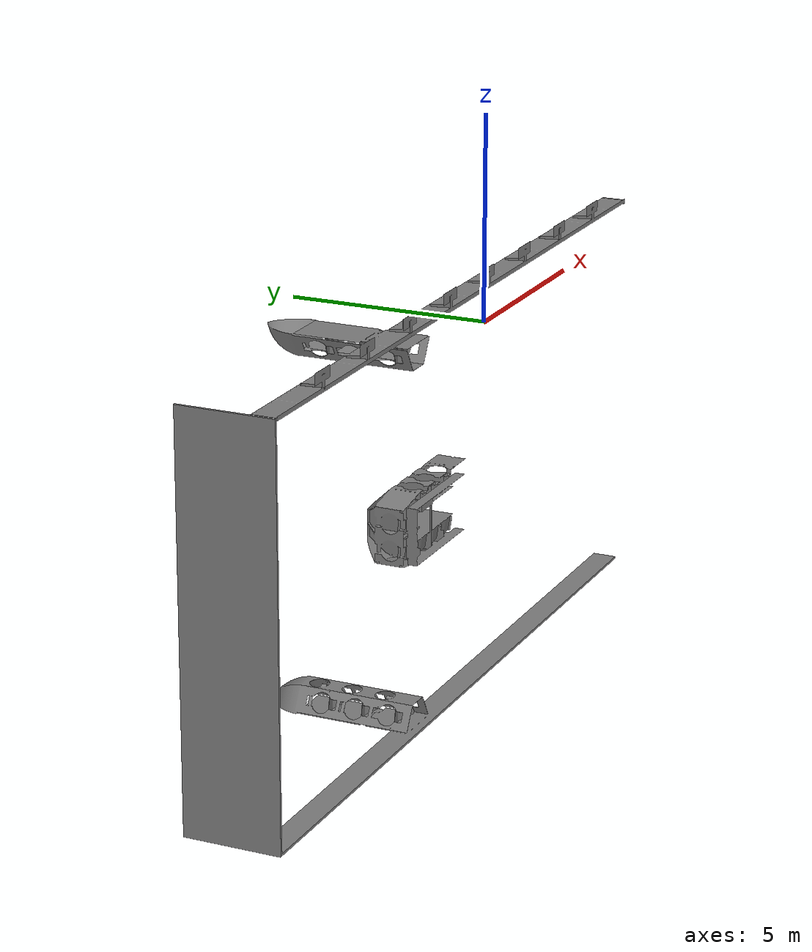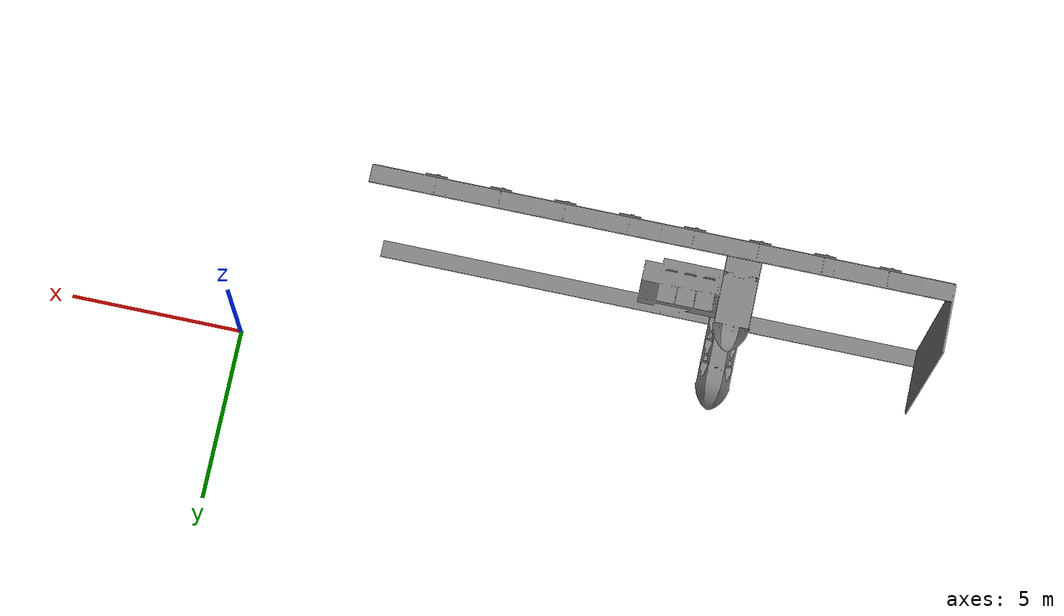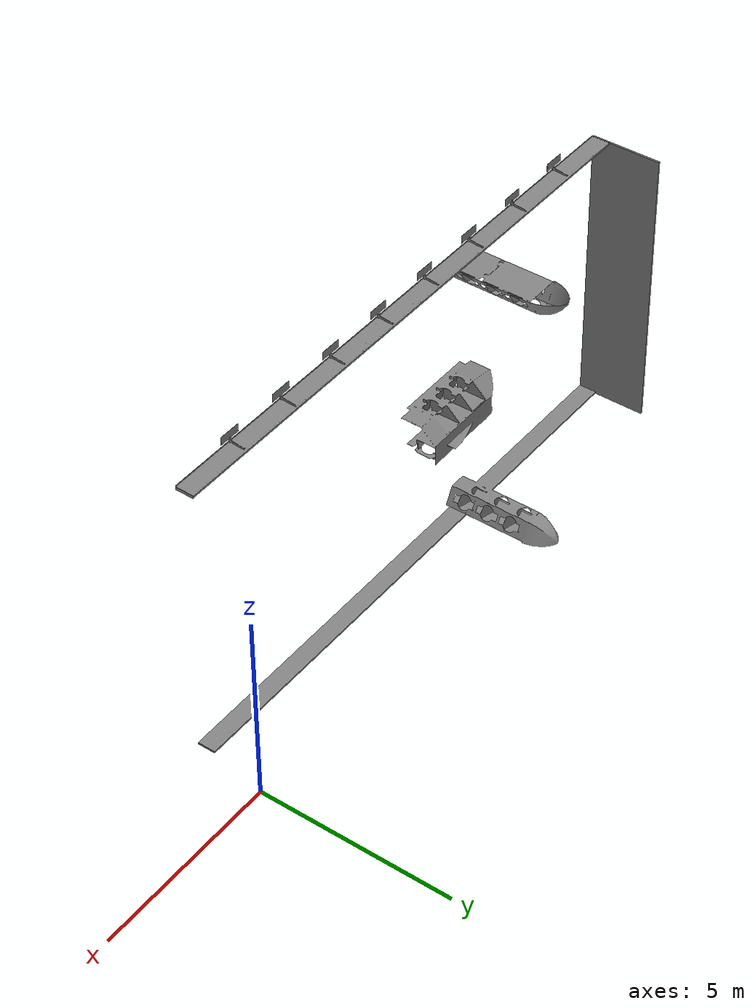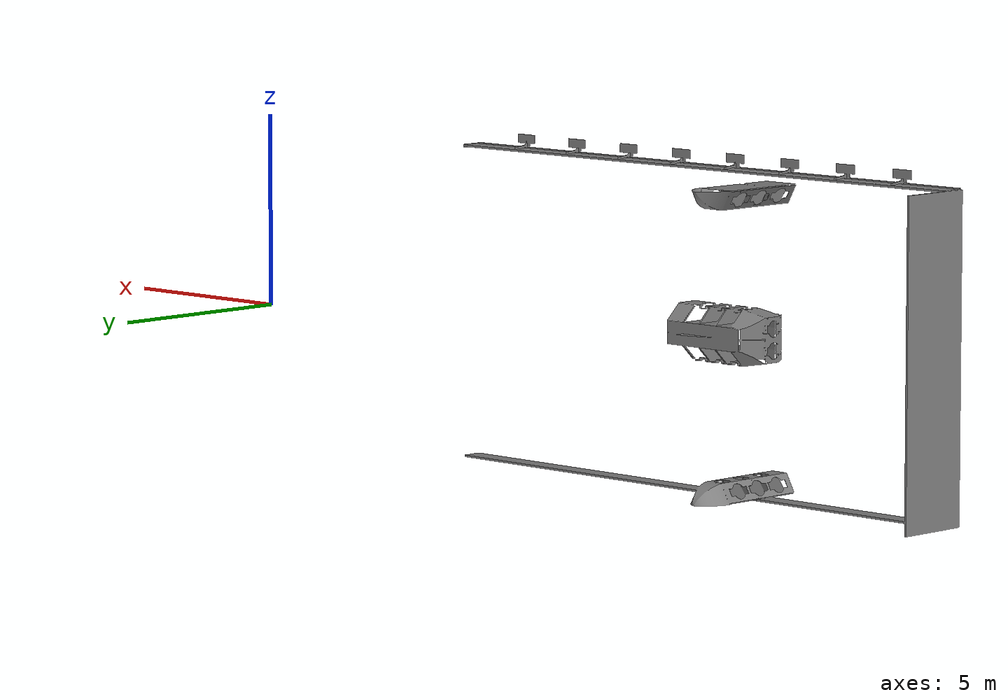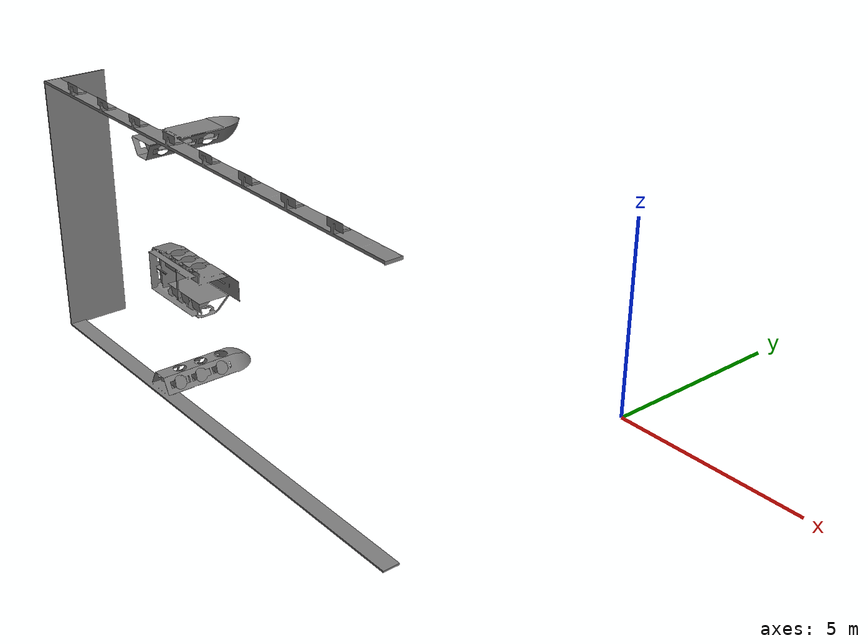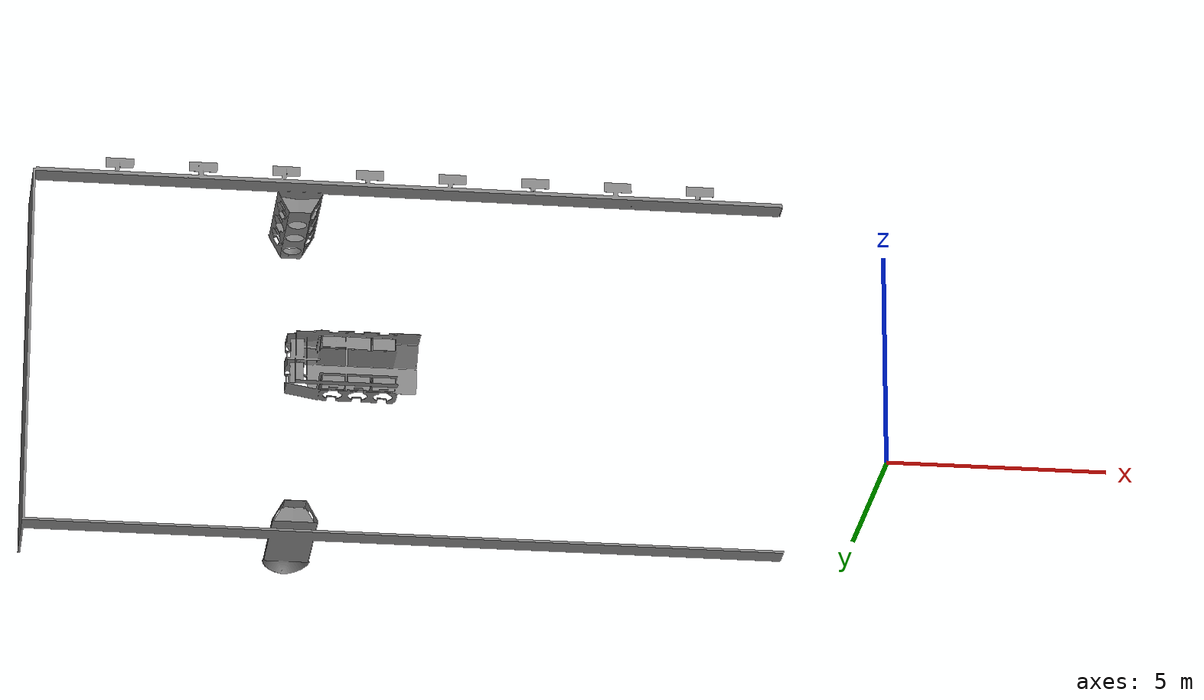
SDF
<?xml version="1.0" encoding="utf-8"?>
<sdf version="1.5">
  <model name="2019-Field-3">
    <pose>0 0 0.00254 0 0 0</pose>
    <static>true</static>
    <link name="All">
      <gravity>1</gravity>
      <self_collide>0</self_collide>
      <pose>-11.2776 -4.572 -3.88230984051777E-14 0 0 0</pose>
      <must_be_base_link>1</must_be_base_link>
      <velocity_decay>
        <linear>0</linear>
        <angular>0</angular>
      </velocity_decay>
      <inertial>
        <mass>1000</mass>
        <pose>1000 100 100 0 0 0</pose>
        <inertia>
          <ixx>100</ixx>
          <ixy>100</ixy>
          <ixz>100</ixz>
          <iyy>100</iyy>
          <iyz>100</iyz>
          <izz>100</izz>
        </inertia>
      </inertial>
      <collision name="All_collision">
        <pose>0 0 0 0 0 0</pose>
        <geometry>
          <mesh>
            <scale>1 1 1</scale>
            <uri>model://2019-Field-3/meshes/All_col.STL</uri>
          </mesh>
        </geometry>
        <surface>
          <contact>
            <ode />
          </contact>
          <friction>
            <ode>
              <mu>1</mu>
              <mu2>1</mu2>
            </ode>
          </friction>
        </surface>
      </collision>
      <visual name="All_visual">
        <pose>0 0 0 0 0 0</pose>
        <material>
          <ambient>0.5 0.5 0.5 1</ambient>
          <diffuse>0.5 0.5 0.5 1</diffuse>
        </material>
        <geometry>
          <mesh>
            <scale>1 1 1</scale>
            <uri>model://2019-Field-3/meshes/All.STL</uri>
          </mesh>
        </geometry>
      </visual>
    </link>
  </model>
</sdf>
